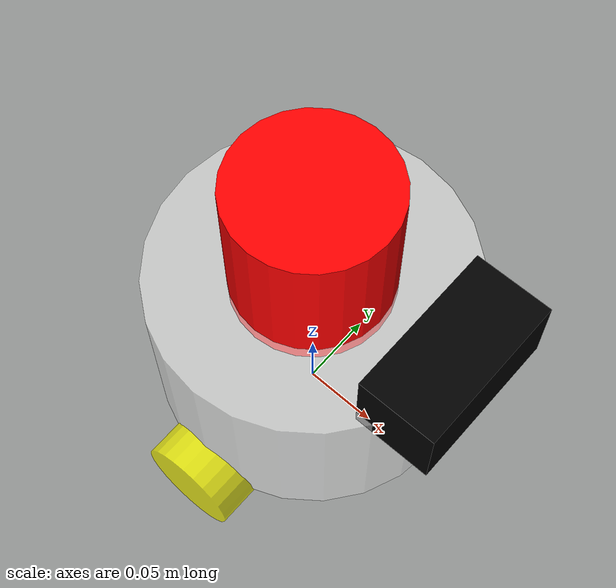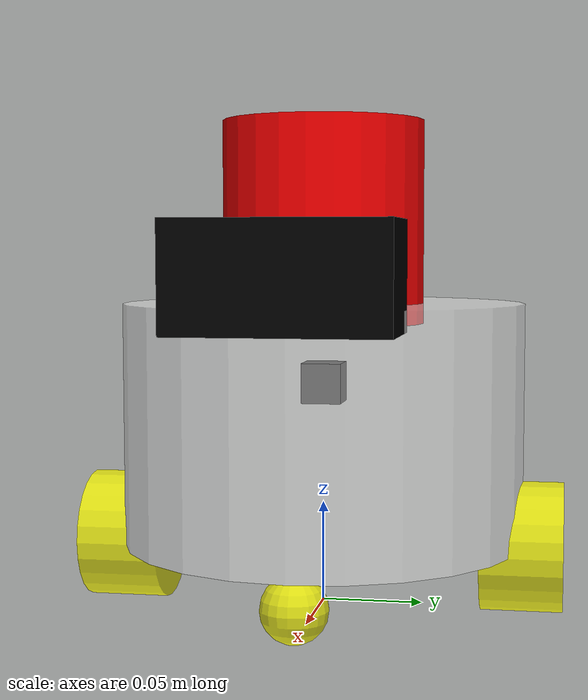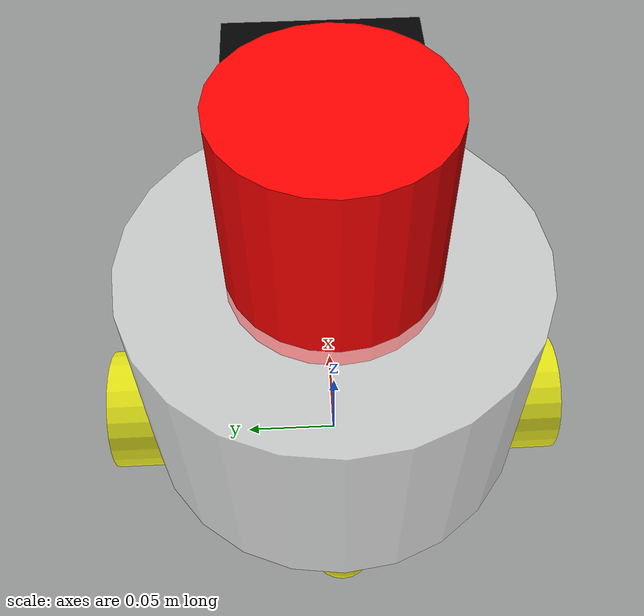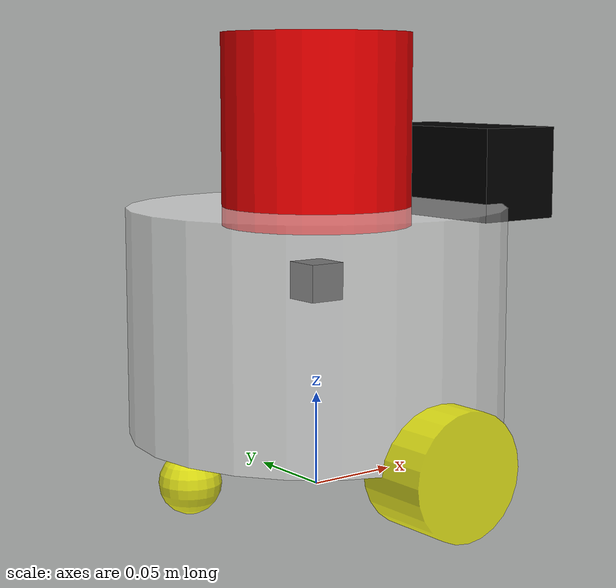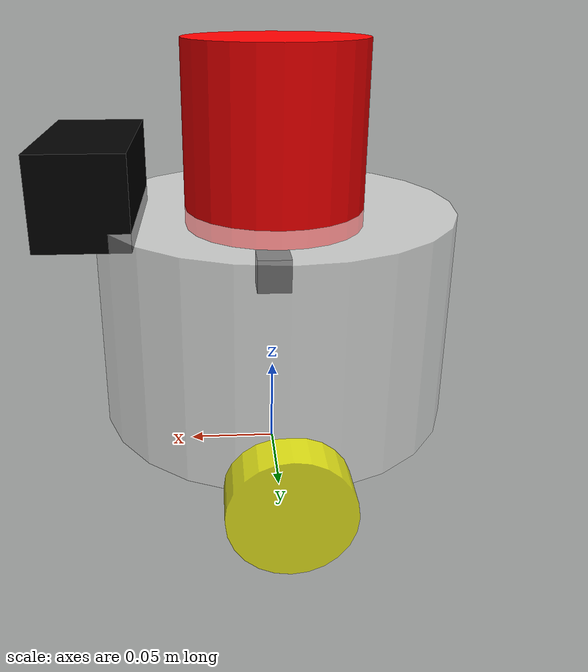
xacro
<?xml version="1.0"?>
<robot xmlns:xacro="http://www.ros.org/wiki/xacro" name="fishbot">

<xacro:include filename="$(find fishbot_description)/urdf/fishbot/base.urdf.xacro"/>
<xacro:include filename="$(find fishbot_description)/urdf/fishbot/sensor/camera.urdf.xacro"/>
<xacro:include filename="$(find fishbot_description)/urdf/fishbot/sensor/laser.urdf.xacro"/>
<xacro:include filename="$(find fishbot_description)/urdf/fishbot/sensor/imu.urdf.xacro"/>
<xacro:include filename="$(find fishbot_description)/urdf/fishbot/actuator/wheel.urdf.xacro"/>
<xacro:include filename="$(find fishbot_description)/urdf/fishbot/actuator/caster.urdf.xacro"/>

<xacro:base_xacro length="0.12" radius="0.10"/>
<xacro:wheel_xacro wheel_name="left_wheel" xyz="0.0 0.10 -0.06"/>
<xacro:wheel_xacro wheel_name="right_wheel" xyz="0.0 -0.10 -0.06"/>
<xacro:imu_xacro imu_name="imu" xyz="0.0 0.0 0.02"/>
<xacro:camera_xacro camera_name="camera" xyz="0.10 0.0 0.075"/>
<xacro:laser_xacro laser_name="laser" xyz="0.00 0.0 0.10"/>
<xacro:caster_xacro caster_name="front_caster" xyz="0.08 0.0 -0.076"/>
<xacro:caster_xacro caster_name="back_caster" xyz="-0.08 0.0 -0.076"/>

</robot>

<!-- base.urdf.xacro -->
<robot xmlns:xacro="http://www.ros.org/wiki/xacro">
    <xacro:include filename="$(find fishbot_description)/urdf/fishbot/common_inertia.xacro" />
    <xacro:macro name="base_xacro" params="length radius">
        <link name="base_footprint" />
        <!-- 机器人身体部分 -->
        <link name="base_link">
            <!-- 部件的外观 -->
            <visual>
                <origin xyz="0.0 0.0 0.0" rpy="0.0 0.0 0.0"/>
                <geometry>
                    <cylinder radius="${radius}" length="${length}"/>
                </geometry>
                <material name="white">
                    <color rgba="1.0 1.0 1.0 0.5"/>
                </material>
            </visual>
            <collision>
                <origin xyz="0.0 0.0 0.0" rpy="0.0 0.0 0.0"/>
                <geometry>
                    <cylinder radius="${radius}" length="${length}"/>
                </geometry>
                <material name="white">
                    <color rgba="1.0 1.0 1.0 0.5"/>
                </material>
            </collision>
            <xacro:cylinder_inertia m="1.0" r="${radius}" h="${length}" />
        </link>

        <joint name="joint_name" type="fixed">
            <origin xyz="0.0 0.0 ${length/2 + 0.032 - 0.001}" rpy="0.0 0.0 0.0"/>
            <parent link="base_footprint"/>
            <child link="base_link"/>
        </joint>
    </xacro:macro>

</robot>

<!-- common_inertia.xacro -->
<robot xmlns:xacro="http://www.ros.org/wiki/xacro">

    <xacro:macro name="box_inertia" params="m w h d">
        <inertial>
            <mass value="${m}"/>
            <inertia ixx="${m/12.0*(h*h+d*d)}" ixy="0.0" ixz="0.0"
                     iyy="${m/12.0*(w*w+d*d)}" iyz="0.0"
                     izz="${m/12.0*(w*w+h*h)}"/>
        </inertial>
    </xacro:macro>

    <xacro:macro name="cylinder_inertia" params="m r h">
        <inertial>
            <mass value="${m}"/>
            <inertia ixx="${m/12.0*(3*r*r+h*h)}" ixy="0.0" ixz="0.0"
                     iyy="${m/12.0*(3*r*r+h*h)}" iyz="0.0"
                     izz="${m/2.0*r*r}"/>
        </inertial>
    </xacro:macro>

    <xacro:macro name="sphere_inertia" params="m r">
        <inertial>
            <mass value="${m}"/>
            <inertia ixx="${2.0/5.0*m*r*r}" ixy="0.0" ixz="0.0"
                     iyy="${2.0/5.0*m*r*r}" iyz="0.0"
                     izz="${2.0/5.0*m*r*r}"/>
        </inertial>
    </xacro:macro>

</robot>

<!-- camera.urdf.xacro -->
<robot xmlns:xacro="http://www.ros.org/wiki/xacro">
<xacro:include filename="$(find fishbot_description)/urdf/fishbot/common_inertia.xacro" />
    <xacro:macro name="camera_xacro" params="camera_name xyz">
        <link name="${camera_name}_link">
            <visual>
                <origin xyz="0.0 0.0 0.0" rpy="0.0 0.0 0.0"/>
                <geometry>
                    <box size="0.05 0.10 0.05"/>
                </geometry>
                <material name="black">
                    <color rgba="0.0 0.0 0.0 1.0"/>
                </material>
            </visual>
            <collision>
                <origin xyz="0.0 0.0 0.0" rpy="0.0 0.0 0.0"/>
                <geometry>
                    <box size="0.05 0.05 0.05"/>
                </geometry>
                <material name="black">
                    <color rgba="0.0 0.0 0.0 1.0"/>
                </material>
            </collision>
            <xacro:box_inertia m="0.1" w="0.05" h="0.10" d="0.05" />
        </link>
        <joint name="${camera_name}_joint" type="fixed">
            <origin xyz="${xyz}" rpy="0.0 0.0 0.0"/>
            <parent link="base_link"/>
            <child link="${camera_name}_link"/>
        </joint>
    </xacro:macro>
</robot>

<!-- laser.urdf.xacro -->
<robot xmlns:xacro="http://www.ros.org/wiki/xacro">
<xacro:include filename="$(find fishbot_description)/urdf/fishbot/common_inertia.xacro" />
    <xacro:macro name="laser_xacro" params="laser_name xyz">
        <link name="${laser_name}_cylinder_link">
            <visual>
                <origin xyz="0.0 0.0 0.0" rpy="0.0 0.0 0.0"/>
                <geometry>
                    <cylinder radius="0.05" length="0.1"/>
                </geometry>
                <material name="red">
                    <color rgba="1.0 0.0 0.0 1.0"/>
                </material>
            </visual>
            <collision>
                <origin xyz="0.0 0.0 0.0" rpy="0.0 0.0 0.0"/>
                <geometry>
                    <cylinder radius="0.05" length="0.1"/>
                </geometry>
                <material name="red">
                    <color rgba="1.0 0.0 0.0 1.0"/>
                </material>
            </collision>
            <xacro:cylinder_inertia m="0.05" r="0.01" h="0.10" />
        </link>
        <joint name="${laser_name}_cylinder_joint" type="fixed">
            <origin xyz="${xyz}" rpy="0.0 0.0 0.0"/>
            <parent link="base_link"/>
            <child link="${laser_name}_cylinder_link"/>
        </joint>
        <link name="${laser_name}_link">
            <visual>
                <origin xyz="0.0 0.0 0.0" rpy="0.0 0.0 0.0"/>
                <geometry>
                    <cylinder radius="0.01" length="0.02"/>
                </geometry>
                <material name="black">
                    <color rgba="0.0 0.0 0.0 1.0"/>
                </material>
            </visual>
            <collision>
                <origin xyz="0.0 0.0 0.0" rpy="0.0 0.0 0.0"/>
                <geometry>
                    <cylinder radius="0.01" length="0.02"/>
                </geometry>
                <material name="black">
                    <color rgba="0.0 0.0 0.0 1.0"/>
                </material>
            </collision>
            <xacro:cylinder_inertia m="0.10" r="0.02" h="0.02" />
        </link>
        <joint name="${laser_name}_joint" type="fixed">
            <origin xyz="0.0 0.0 0.0" rpy="0.0 0.0 0.0"/>
            <parent link="${laser_name}_cylinder_link"/>
            <child link="${laser_name}_link"/>
        </joint>
    </xacro:macro>
</robot>

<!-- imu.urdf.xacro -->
<robot xmlns:xacro="http://www.ros.org/wiki/xacro">
<xacro:include filename="$(find fishbot_description)/urdf/fishbot/common_inertia.xacro" />
    <xacro:macro name="imu_xacro" params="imu_name xyz">
        <link name="${imu_name}_link">
            <visual>
                <origin xyz="0.0 0.0 0.0" rpy="0.0 0.0 0.0"/>
                <geometry>
                    <box size="0.02 0.02 0.02"/>
                </geometry>
                <material name="black">
                    <color rgba="0.0 0.0 0.0 1.0"/>
                </material>
            </visual>
            <collision>
                <origin xyz="0.0 0.0 0.0" rpy="0.0 0.0 0.0"/>
                <geometry>
                    <box size="0.02 0.02 0.02"/>
                </geometry>
                <material name="black">
                    <color rgba="0.0 0.0 0.0 1.0"/>
                </material>
            </collision>
            <xacro:box_inertia m="0.05" w="0.02" h="0.02" d="0.02" />
        </link>
        <joint name="${imu_name}_joint" type="fixed">
            <origin xyz="${xyz}" rpy="0.0 0.0 0.0"/>
            <parent link="base_link"/>
            <child link="${imu_name}_link"/>
        </joint>
    </xacro:macro>
</robot>

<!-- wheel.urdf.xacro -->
<robot xmlns:xacro="http://www.ros.org/wiki/xacro">
<xacro:include filename="$(find fishbot_description)/urdf/fishbot/common_inertia.xacro" />
    <xacro:macro name="wheel_xacro" params="wheel_name xyz">
        <link name="${wheel_name}_link">
            <visual>
                <origin xyz="0.0 0.0 0.0" rpy="1.57079 0.0 0.0"/>
                <geometry>
                    <cylinder radius="0.032" length="0.04"/>
                </geometry>
                <material name="yellow">
                    <color rgba="1.0 1.0 0.0 0.8"/>
                </material>
            </visual>
            <collision>
                <origin xyz="0.0 0.0 0.0" rpy="1.57079 0.0 0.0"/>
                <geometry>
                    <cylinder radius="0.032" length="0.04"/>
                </geometry>
                <material name="yellow">
                    <color rgba="1.0 1.0 0.0 0.8"/>
                </material>
            </collision>
            <xacro:cylinder_inertia m="0.05" r="0.032" h="0.04" />
        </link>
        <joint name="${wheel_name}_joint" type="continuous">
            <origin xyz="${xyz}" rpy="0.0 0.0 0.0"/>
            <parent link="base_link"/>
            <child link="${wheel_name}_link"/>
            <axis xyz="0.0 0.0 1.0"/>
        </joint>
    </xacro:macro>
</robot>

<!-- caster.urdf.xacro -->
<robot xmlns:xacro="http://www.ros.org/wiki/xacro">
<xacro:include filename="$(find fishbot_description)/urdf/fishbot/common_inertia.xacro" />
    <xacro:macro name="caster_xacro" params="caster_name xyz">
        <link name="${caster_name}_link">
            <visual>
                <origin xyz="0.0 0.0 0.0" rpy="0 0 0"/>
                <geometry>
                    <sphere radius="0.016"/>
                </geometry>
                <material name="yellow">
                    <color rgba="1.0 1.0 0.0 0.8"/>
                </material>
            </visual>
            <collision>
                <origin xyz="0.0 0.0 0.0" rpy="0 0 0"/>
                <geometry>
                    <sphere radius="0.016"/>
                </geometry>
                <material name="yellow">
                    <color rgba="1.0 1.0 0.0 0.8"/>
                </material>
            </collision>
            <xacro:sphere_inertia m="0.05" r="0.016" />
        </link>
        <joint name="${caster_name}_joint" type="fixed">
            <origin xyz="${xyz}" rpy="0.0 0.0 0.0"/>
            <parent link="base_link"/>
            <child link="${caster_name}_link"/>
        </joint>
        <gazebo reference="${caster_name}_linkk">
            <mu1 value="0.0"/>
            <mu2 value="0.0"/>
            <kp value="1000000000.0"/>
            <kd value="1.0"/>
        </gazebo>
    </xacro:macro>
</robot>
